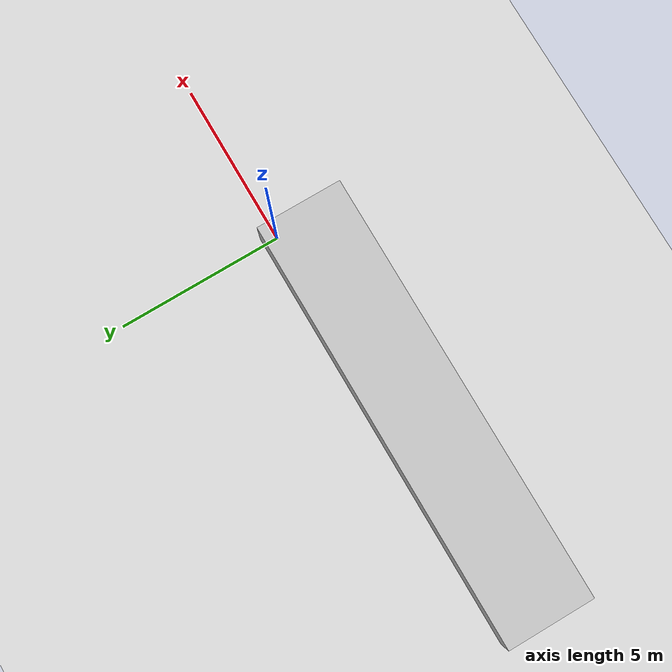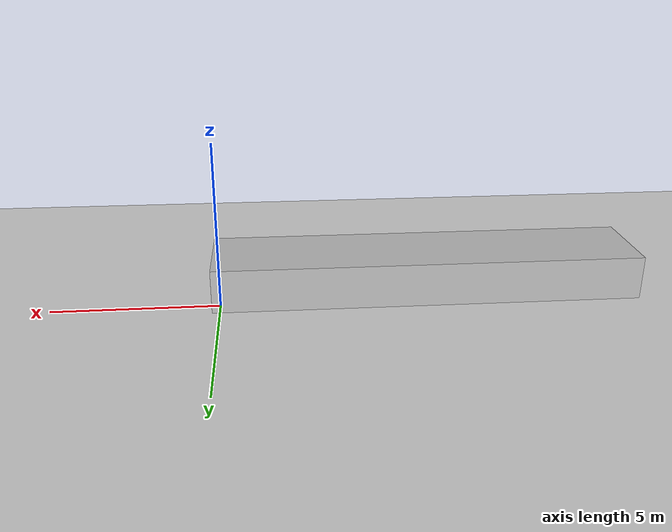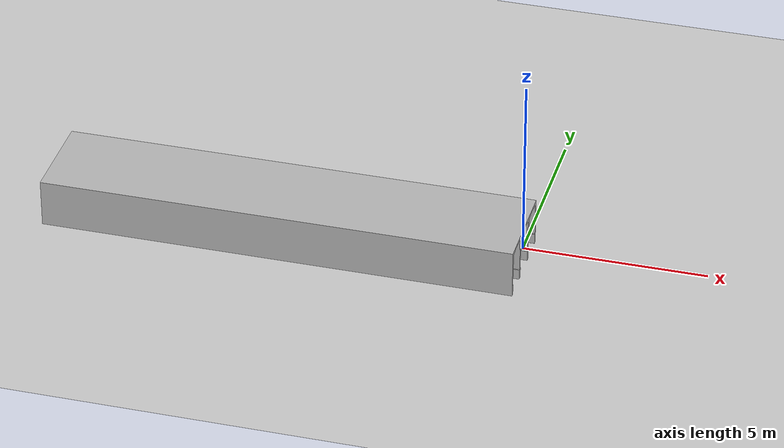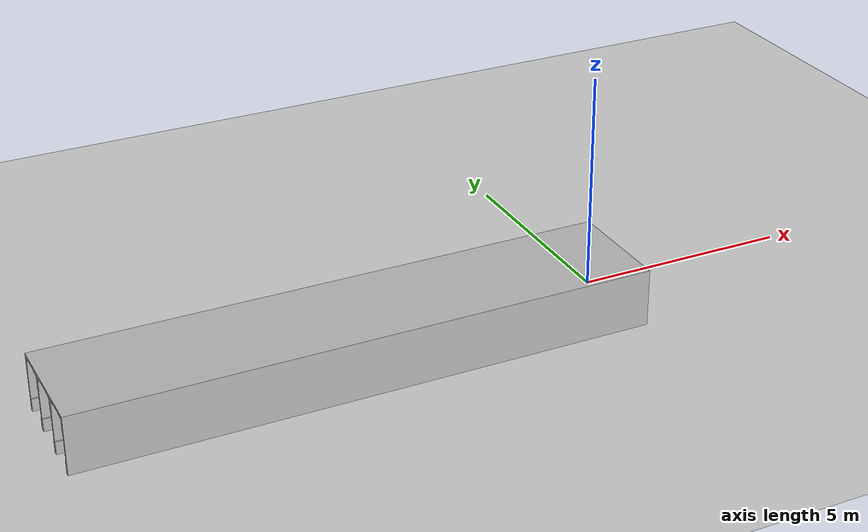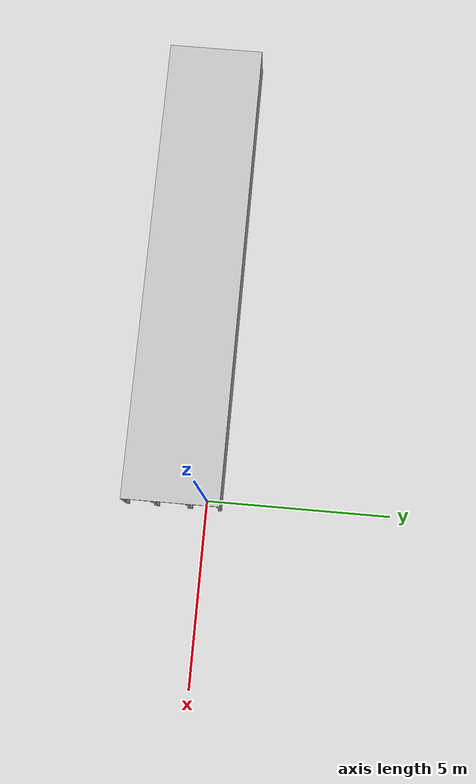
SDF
<?xml version="1.0" ?>
<sdf version="1.4">
  <world name="default">
    <include>
      <uri>model://ground_plane</uri>
    </include>
    <include>
      <uri>model://sun</uri>
    </include>

    <model name="tunnel">
      <pose> -3.0 -0.4 -0.05 1.5708 0 1.5708</pose>
      <static>true</static>
      <link name="tunnelbody">
	<visual name="visual">
	  <pose>0 0 0 0 0 0</pose>
	  <geometry>
	    <mesh><uri>model://shbtunnel.dae</uri></mesh>
	  </geometry>
	</visual>
	<collision name="collision2">
	  <pose>0 0 0 0 0 0</pose>
          <geometry>
            <mesh><uri>model://shbtunnel.dae</uri></mesh>
          </geometry>
        </collision>
      </link>
    </model>

  </world>
</sdf>
